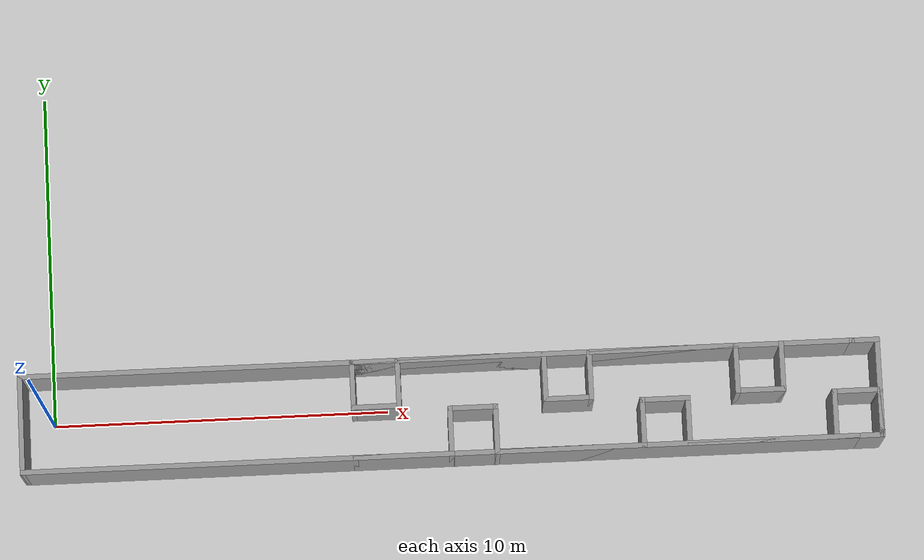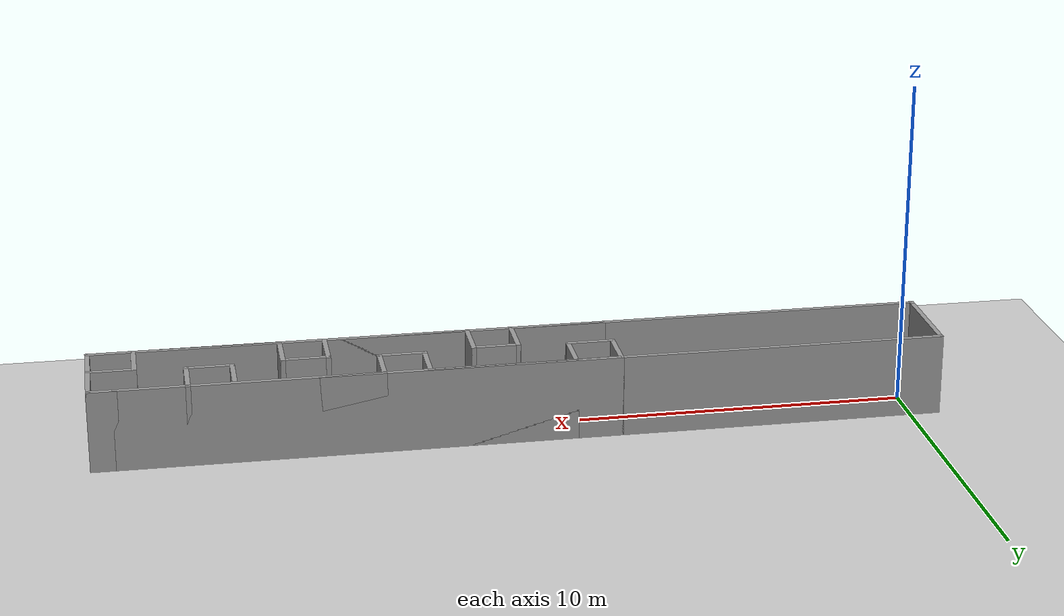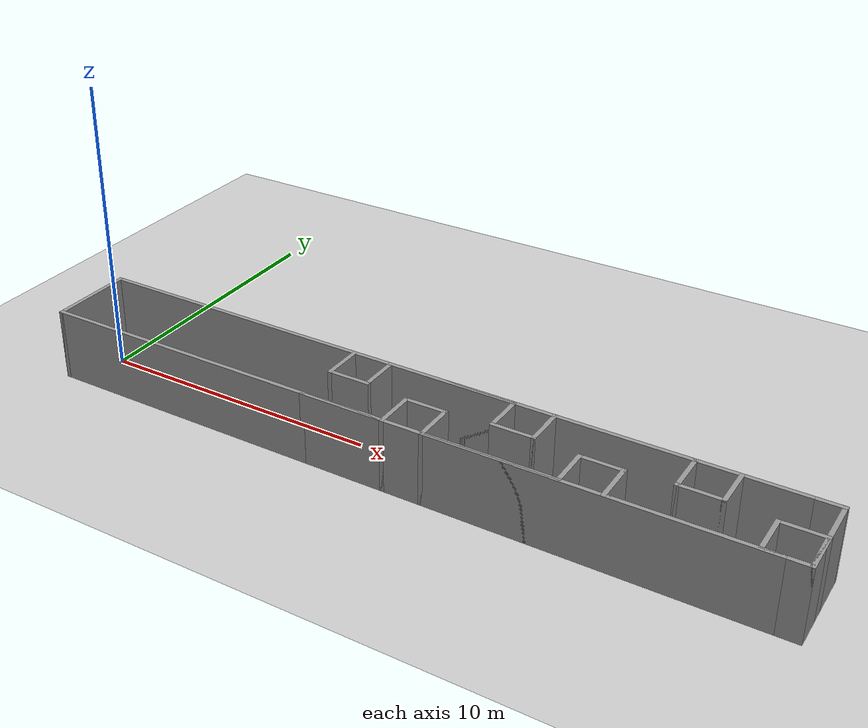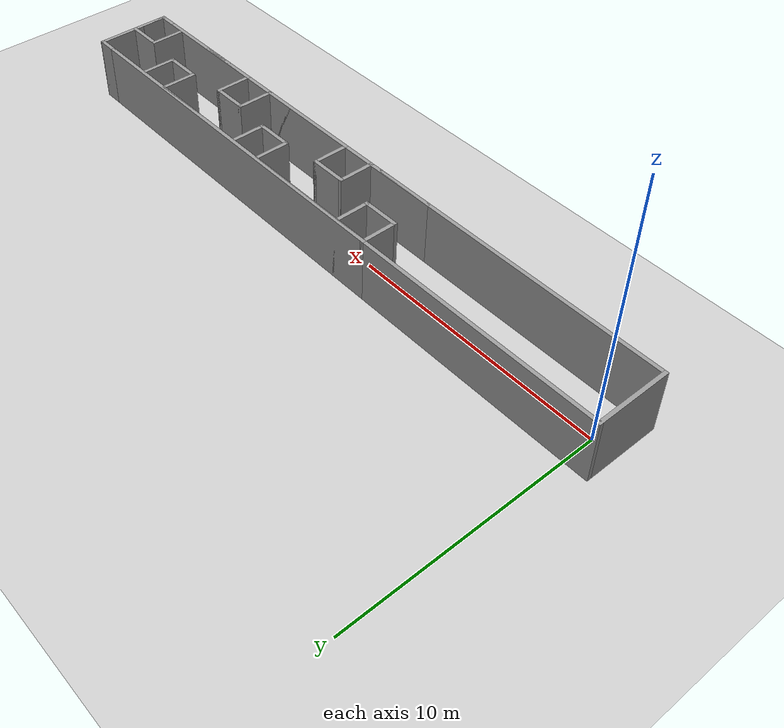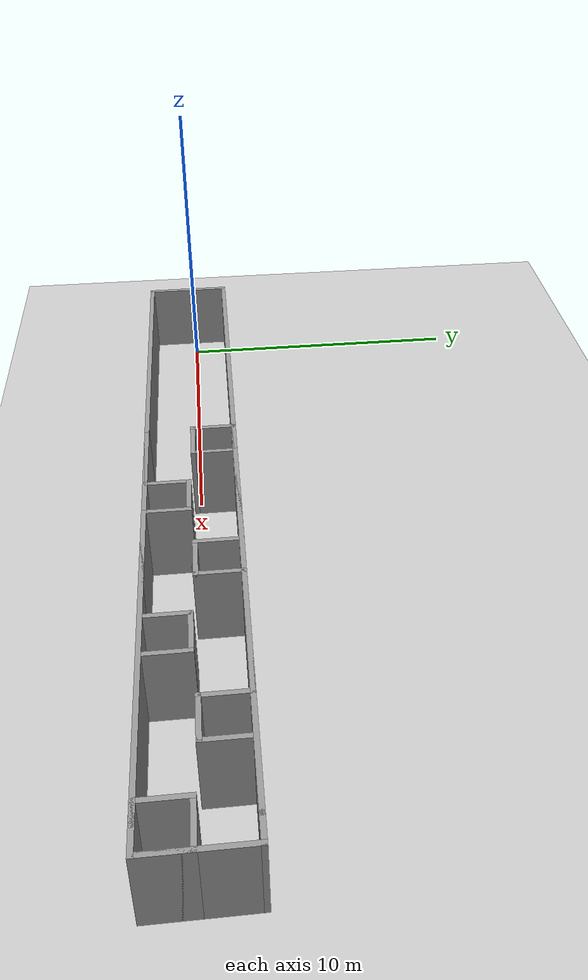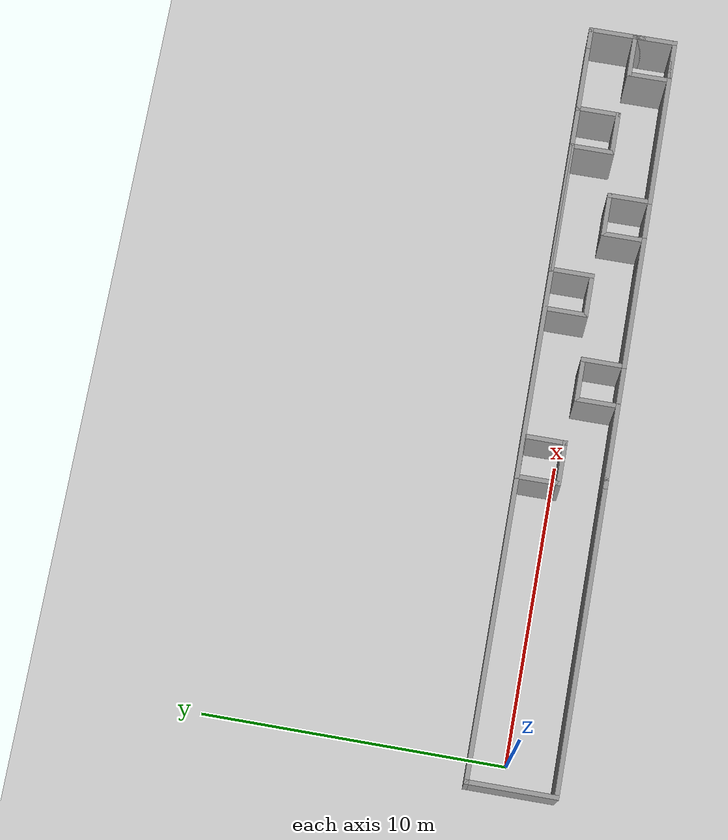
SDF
<sdf version="1.6">
 <world name="default">
  <light name="sun" type="directional">
   <pose>0 0 10 0 -0 0</pose>
   <diffuse>0.8 0.8 0.8 1</diffuse>
   <specular>0.1 0.1 0.1 1</specular>
   <attenuation>
    <range>1000</range>
    <constant>0.9</constant>
    <linear>0.01</linear>
    <quadratic>0.001</quadratic>
   </attenuation>
   <direction>-0.5 0.5 -1</direction>
  </light>
  <model name="ground_plane">
   <static>1</static>
   <link name="link">
    <collision name="collision">
     <geometry><plane><normal>0 0 1</normal><size>100 100</size></plane></geometry>
     <surface><friction><ode><mu>100</mu><mu2>50</mu2></ode></friction></surface>
    </collision>
    <visual name="visual">
     <cast_shadows>0</cast_shadows>
     <geometry><plane><normal>0 0 1</normal><size>100 100</size></plane></geometry>
     <material>
      <script><uri>file://media/materials/scripts/gazebo.material</uri><name>Gazebo/Grey</name></script>
     </material>
    </visual>
   </link>
  </model>
  <gravity>0 0 -9.8</gravity>
  <magnetic_field>6e-06 2.3e-05 -4.2e-05</magnetic_field>
  <atmosphere type="adiabatic"/>
  <physics name="default_physics" default="0" type="ode">
   <max_step_size>0.001</max_step_size>
   <real_time_factor>1</real_time_factor>
   <real_time_update_rate>1000</real_time_update_rate>
  </physics>
  <scene><ambient>0.4 0.4 0.4 1</ambient><background>0.7 0.7 0.7 1</background><shadows>1</shadows></scene>
  <spherical_coordinates>
   <surface_model>EARTH_WGS84</surface_model>
   <latitude_deg>0</latitude_deg>
   <longitude_deg>0</longitude_deg>
   <elevation>0</elevation>
   <heading_deg>0</heading_deg>
  </spherical_coordinates>
  <model name="small_s_map">
   <pose>11.8833 -0.220032 0 0 -0 0</pose>
   <link name="Wall_48">
    <collision name="Wall_48_Collision">
     <geometry><box><size>3 0.15 2.5</size></box></geometry>
     <pose>0 0 1.25 0 -0 0</pose>
    </collision>
    <visual name="Wall_48_Visual">
     <pose>0 0 1.25 0 -0 0</pose>
     <geometry><box><size>3 0.15 2.5</size></box></geometry>
     <material>
      <script><uri>file://media/materials/scripts/gazebo.material</uri><name>Gazebo/Grey</name></script>
      <ambient>1 1 1 1</ambient>
     </material>
    </visual>
    <pose>-12.725 0 0 0 0 -1.5708</pose>
   </link>
   <link name="Wall_49">
    <collision name="Wall_49_Collision">
     <geometry><box><size>10 0.15 2.5</size></box></geometry>
     <pose>0 0 1.25 0 -0 0</pose>
    </collision>
    <visual name="Wall_49_Visual">
     <pose>0 0 1.25 0 -0 0</pose>
     <geometry><box><size>10 0.15 2.5</size></box></geometry>
     <material>
      <script><uri>file://media/materials/scripts/gazebo.material</uri><name>Gazebo/Grey</name></script>
      <ambient>1 1 1 1</ambient>
     </material>
    </visual>
    <pose>-7.8 -1.425 0 0 -0 0</pose>
   </link>
   <link name="Wall_51">
    <collision name="Wall_51_Collision">
     <geometry><box><size>10 0.15 2.5</size></box></geometry>
     <pose>0 0 1.25 0 -0 0</pose>
    </collision>
    <visual name="Wall_51_Visual">
     <pose>0 0 1.25 0 -0 0</pose>
     <geometry><box><size>10 0.15 2.5</size></box></geometry>
     <material>
      <script><uri>file://media/materials/scripts/gazebo.material</uri><name>Gazebo/Grey</name></script>
      <ambient>1 1 1 1</ambient>
     </material>
    </visual>
    <pose>-7.8 1.425 0 0 -0 3.14159</pose>
   </link>
   <link name="Wall_53">
    <collision name="Wall_53_Collision">
     <geometry><box><size>15 0.15 2.5</size></box></geometry>
     <pose>0 0 1.25 0 -0 0</pose>
    </collision>
    <visual name="Wall_53_Visual">
     <pose>0 0 1.25 0 -0 0</pose>
     <geometry><box><size>15 0.15 2.5</size></box></geometry>
     <material>
      <script><uri>file://media/materials/scripts/gazebo.material</uri><name>Gazebo/Grey</name></script>
      <ambient>1 1 1 1</ambient>
     </material>
    </visual>
    <pose>4.55 1.425 0 0 -0 0</pose>
   </link>
   <link name="Wall_55">
    <collision name="Wall_55_Collision">
     <geometry><box><size>15 0.15 2.5</size></box></geometry>
     <pose>0 0 1.25 0 -0 0</pose>
    </collision>
    <visual name="Wall_55_Visual">
     <pose>0 0 1.25 0 -0 0</pose>
     <geometry><box><size>15 0.15 2.5</size></box></geometry>
     <material>
      <script><uri>file://media/materials/scripts/gazebo.material</uri><name>Gazebo/Grey</name></script>
      <ambient>1 1 1 1</ambient>
     </material>
    </visual>
    <pose>4.55 -1.425 0 0 -0 3.14159</pose>
   </link>
   <link name="Wall_57">
    <collision name="Wall_57_Collision">
     <geometry><box><size>1.5 0.15 2.5</size></box></geometry>
     <pose>0 0 1.25 0 -0 0</pose>
    </collision>
    <visual name="Wall_57_Visual">
     <pose>0 0 1.25 0 -0 0</pose>
     <geometry><box><size>1.5 0.15 2.5</size></box></geometry>
     <material>
      <script><uri>file://media/materials/scripts/gazebo.material</uri><name>Gazebo/Grey</name></script>
      <ambient>1 1 1 1</ambient>
     </material>
    </visual>
    <pose>-2.2 1.425 0 0 -0 0</pose>
   </link>
   <link name="Wall_58">
    <collision name="Wall_58_Collision">
     <geometry><box><size>1.5 0.15 2.5</size></box></geometry>
     <pose>0 0 1.25 0 -0 0</pose>
    </collision>
    <visual name="Wall_58_Visual">
     <pose>0 0 1.25 0 -0 0</pose>
     <geometry><box><size>1.5 0.15 2.5</size></box></geometry>
     <material>
      <script><uri>file://media/materials/scripts/gazebo.material</uri><name>Gazebo/Grey</name></script>
      <ambient>1 1 1 1</ambient>
     </material>
    </visual>
    <pose>-1.525 0.75 0 0 0 -1.5708</pose>
   </link>
   <link name="Wall_59">
    <collision name="Wall_59_Collision">
     <geometry><box><size>1.5 0.15 2.5</size></box></geometry>
     <pose>0 0 1.25 0 -0 0</pose>
    </collision>
    <visual name="Wall_59_Visual">
     <pose>0 0 1.25 0 -0 0</pose>
     <geometry><box><size>1.5 0.15 2.5</size></box></geometry>
     <material>
      <script><uri>file://media/materials/scripts/gazebo.material</uri><name>Gazebo/Grey</name></script>
      <ambient>1 1 1 1</ambient>
     </material>
    </visual>
    <pose>-2.2 0.075 0 0 -0 3.14159</pose>
   </link>
   <link name="Wall_61">
    <collision name="Wall_61_Collision">
     <geometry><box><size>4.5 0.15 2.5</size></box></geometry>
     <pose>0 0 1.25 0 -0 0</pose>
    </collision>
    <visual name="Wall_61_Visual">
     <pose>0 0 1.25 0 -0 0</pose>
     <geometry><box><size>4.5 0.15 2.5</size></box></geometry>
     <material>
      <script><uri>file://media/materials/scripts/gazebo.material</uri><name>Gazebo/Grey</name></script>
      <ambient>1 1 1 1</ambient>
     </material>
    </visual>
    <pose>0.65 1.425 0 0 -0 0</pose>
   </link>
   <link name="Wall_62">
    <collision name="Wall_62_Collision">
     <geometry><box><size>1.5 0.15 2.5</size></box></geometry>
     <pose>0 0 1.25 0 -0 0</pose>
    </collision>
    <visual name="Wall_62_Visual">
     <pose>0 0 1.25 0 -0 0</pose>
     <geometry><box><size>1.5 0.15 2.5</size></box></geometry>
     <material>
      <script><uri>file://media/materials/scripts/gazebo.material</uri><name>Gazebo/Grey</name></script>
      <ambient>1 1 1 1</ambient>
     </material>
    </visual>
    <pose>2.825 0.75 0 0 0 -1.5708</pose>
   </link>
   <link name="Wall_63">
    <collision name="Wall_63_Collision">
     <geometry><box><size>1.5 0.15 2.5</size></box></geometry>
     <pose>0 0 1.25 0 -0 0</pose>
    </collision>
    <visual name="Wall_63_Visual">
     <pose>0 0 1.25 0 -0 0</pose>
     <geometry><box><size>1.5 0.15 2.5</size></box></geometry>
     <material>
      <script><uri>file://media/materials/scripts/gazebo.material</uri><name>Gazebo/Grey</name></script>
      <ambient>1 1 1 1</ambient>
     </material>
    </visual>
    <pose>3.5 0.075 0 0 -0 0</pose>
   </link>
   <link name="Wall_64">
    <collision name="Wall_64_Collision">
     <geometry><box><size>1.5 0.15 2.5</size></box></geometry>
     <pose>0 0 1.25 0 -0 0</pose>
    </collision>
    <visual name="Wall_64_Visual">
     <pose>0 0 1.25 0 -0 0</pose>
     <geometry><box><size>1.5 0.15 2.5</size></box></geometry>
     <material>
      <script><uri>file://media/materials/scripts/gazebo.material</uri><name>Gazebo/Grey</name></script>
      <ambient>1 1 1 1</ambient>
     </material>
    </visual>
    <pose>4.175 0.75 0 0 -0 1.5708</pose>
   </link>
   <link name="Wall_65">
    <collision name="Wall_65_Collision">
     <geometry><box><size>4.5 0.15 2.5</size></box></geometry>
     <pose>0 0 1.25 0 -0 0</pose>
    </collision>
    <visual name="Wall_65_Visual">
     <pose>0 0 1.25 0 -0 0</pose>
     <geometry><box><size>4.5 0.15 2.5</size></box></geometry>
     <material>
      <script><uri>file://media/materials/scripts/gazebo.material</uri><name>Gazebo/Grey</name></script>
      <ambient>1 1 1 1</ambient>
     </material>
    </visual>
    <pose>6.35 1.425 0 0 -0 0</pose>
   </link>
   <link name="Wall_66">
    <collision name="Wall_66_Collision">
     <geometry><box><size>1.5 0.15 2.5</size></box></geometry>
     <pose>0 0 1.25 0 -0 0</pose>
    </collision>
    <visual name="Wall_66_Visual">
     <pose>0 0 1.25 0 -0 0</pose>
     <geometry><box><size>1.5 0.15 2.5</size></box></geometry>
     <material>
      <script><uri>file://media/materials/scripts/gazebo.material</uri><name>Gazebo/Grey</name></script>
      <ambient>1 1 1 1</ambient>
     </material>
    </visual>
    <pose>8.525 0.75 0 0 0 -1.5708</pose>
   </link>
   <link name="Wall_67">
    <collision name="Wall_67_Collision">
     <geometry><box><size>1.5 0.15 2.5</size></box></geometry>
     <pose>0 0 1.25 0 -0 0</pose>
    </collision>
    <visual name="Wall_67_Visual">
     <pose>0 0 1.25 0 -0 0</pose>
     <geometry><box><size>1.5 0.15 2.5</size></box></geometry>
     <material>
      <script><uri>file://media/materials/scripts/gazebo.material</uri><name>Gazebo/Grey</name></script>
      <ambient>1 1 1 1</ambient>
     </material>
    </visual>
    <pose>9.2 0.075 0 0 -0 0</pose>
   </link>
   <link name="Wall_68">
    <collision name="Wall_68_Collision">
     <geometry><box><size>1.5 0.15 2.5</size></box></geometry>
     <pose>0 0 1.25 0 -0 0</pose>
    </collision>
    <visual name="Wall_68_Visual">
     <pose>0 0 1.25 0 -0 0</pose>
     <geometry><box><size>1.5 0.15 2.5</size></box></geometry>
     <material>
      <script><uri>file://media/materials/scripts/gazebo.material</uri><name>Gazebo/Grey</name></script>
      <ambient>1 1 1 1</ambient>
     </material>
    </visual>
    <pose>9.875 0.75 0 0 -0 1.5708</pose>
   </link>
   <link name="Wall_70">
    <collision name="Wall_70_Collision">
     <geometry><box><size>3 0.15 2.5</size></box></geometry>
     <pose>0 0 1.25 0 -0 0</pose>
    </collision>
    <visual name="Wall_70_Visual">
     <pose>0 0 1.25 0 -0 0</pose>
     <geometry><box><size>3 0.15 2.5</size></box></geometry>
     <material>
      <script><uri>file://media/materials/scripts/gazebo.material</uri><name>Gazebo/Grey</name></script>
      <ambient>1 1 1 1</ambient>
     </material>
    </visual>
    <pose>-1.45 -1.425 0 0 -0 0</pose>
   </link>
   <link name="Wall_71">
    <collision name="Wall_71_Collision">
     <geometry><box><size>1.5 0.15 2.5</size></box></geometry>
     <pose>0 0 1.25 0 -0 0</pose>
    </collision>
    <visual name="Wall_71_Visual">
     <pose>0 0 1.25 0 -0 0</pose>
     <geometry><box><size>1.5 0.15 2.5</size></box></geometry>
     <material>
      <script><uri>file://media/materials/scripts/gazebo.material</uri><name>Gazebo/Grey</name></script>
      <ambient>1 1 1 1</ambient>
     </material>
    </visual>
    <pose>-0.025 -0.75 0 0 -0 1.5708</pose>
   </link>
   <link name="Wall_72">
    <collision name="Wall_72_Collision">
     <geometry><box><size>1.5 0.15 2.5</size></box></geometry>
     <pose>0 0 1.25 0 -0 0</pose>
    </collision>
    <visual name="Wall_72_Visual">
     <pose>0 0 1.25 0 -0 0</pose>
     <geometry><box><size>1.5 0.15 2.5</size></box></geometry>
     <material>
      <script><uri>file://media/materials/scripts/gazebo.material</uri><name>Gazebo/Grey</name></script>
      <ambient>1 1 1 1</ambient>
     </material>
    </visual>
    <pose>0.65 -0.075 0 0 -0 0</pose>
   </link>
   <link name="Wall_73">
    <collision name="Wall_73_Collision">
     <geometry><box><size>1.5 0.15 2.5</size></box></geometry>
     <pose>0 0 1.25 0 -0 0</pose>
    </collision>
    <visual name="Wall_73_Visual">
     <pose>0 0 1.25 0 -0 0</pose>
     <geometry><box><size>1.5 0.15 2.5</size></box></geometry>
     <material>
      <script><uri>file://media/materials/scripts/gazebo.material</uri><name>Gazebo/Grey</name></script>
      <ambient>1 1 1 1</ambient>
     </material>
    </visual>
    <pose>1.325 -0.75 0 0 0 -1.5708</pose>
   </link>
   <link name="Wall_74">
    <collision name="Wall_74_Collision">
     <geometry><box><size>4.5 0.15 2.5</size></box></geometry>
     <pose>0 0 1.25 0 -0 0</pose>
    </collision>
    <visual name="Wall_74_Visual">
     <pose>0 0 1.25 0 -0 0</pose>
     <geometry><box><size>4.5 0.15 2.5</size></box></geometry>
     <material>
      <script><uri>file://media/materials/scripts/gazebo.material</uri><name>Gazebo/Grey</name></script>
      <ambient>1 1 1 1</ambient>
     </material>
    </visual>
    <pose>3.5 -1.425 0 0 -0 0</pose>
   </link>
   <link name="Wall_75">
    <collision name="Wall_75_Collision">
     <geometry><box><size>1.5 0.15 2.5</size></box></geometry>
     <pose>0 0 1.25 0 -0 0</pose>
    </collision>
    <visual name="Wall_75_Visual">
     <pose>0 0 1.25 0 -0 0</pose>
     <geometry><box><size>1.5 0.15 2.5</size></box></geometry>
     <material>
      <script><uri>file://media/materials/scripts/gazebo.material</uri><name>Gazebo/Grey</name></script>
      <ambient>1 1 1 1</ambient>
     </material>
    </visual>
    <pose>5.675 -0.75 0 0 -0 1.5708</pose>
   </link>
   <link name="Wall_76">
    <collision name="Wall_76_Collision">
     <geometry><box><size>1.5 0.15 2.5</size></box></geometry>
     <pose>0 0 1.25 0 -0 0</pose>
    </collision>
    <visual name="Wall_76_Visual">
     <pose>0 0 1.25 0 -0 0</pose>
     <geometry><box><size>1.5 0.15 2.5</size></box></geometry>
     <material>
      <script><uri>file://media/materials/scripts/gazebo.material</uri><name>Gazebo/Grey</name></script>
      <ambient>1 1 1 1</ambient>
     </material>
    </visual>
    <pose>6.35 -0.075 0 0 -0 0</pose>
   </link>
   <link name="Wall_77">
    <collision name="Wall_77_Collision">
     <geometry><box><size>1.5 0.15 2.5</size></box></geometry>
     <pose>0 0 1.25 0 -0 0</pose>
    </collision>
    <visual name="Wall_77_Visual">
     <pose>0 0 1.25 0 -0 0</pose>
     <geometry><box><size>1.5 0.15 2.5</size></box></geometry>
     <material>
      <script><uri>file://media/materials/scripts/gazebo.material</uri><name>Gazebo/Grey</name></script>
      <ambient>1 1 1 1</ambient>
     </material>
    </visual>
    <pose>7.025 -0.75 0 0 0 -1.5708</pose>
   </link>
   <link name="Wall_78">
    <collision name="Wall_78_Collision">
     <geometry><box><size>4.5 0.15 2.5</size></box></geometry>
     <pose>0 0 1.25 0 -0 0</pose>
    </collision>
    <visual name="Wall_78_Visual">
     <pose>0 0 1.25 0 -0 0</pose>
     <geometry><box><size>4.5 0.15 2.5</size></box></geometry>
     <material>
      <script><uri>file://media/materials/scripts/gazebo.material</uri><name>Gazebo/Grey</name></script>
      <ambient>1 1 1 1</ambient>
     </material>
    </visual>
    <pose>9.2 -1.425 0 0 -0 0</pose>
   </link>
   <link name="Wall_79">
    <collision name="Wall_79_Collision">
     <geometry><box><size>1.5 0.15 2.5</size></box></geometry>
     <pose>0 0 1.25 0 -0 0</pose>
    </collision>
    <visual name="Wall_79_Visual">
     <pose>0 0 1.25 0 -0 0</pose>
     <geometry><box><size>1.5 0.15 2.5</size></box></geometry>
     <material>
      <script><uri>file://media/materials/scripts/gazebo.material</uri><name>Gazebo/Grey</name></script>
      <ambient>1 1 1 1</ambient>
     </material>
    </visual>
    <pose>11.375 -0.75 0 0 -0 1.5708</pose>
   </link>
   <link name="Wall_81">
    <collision name="Wall_81_Collision">
     <geometry><box><size>1.5 0.15 2.5</size></box></geometry>
     <pose>0 0 1.25 0 -0 0</pose>
    </collision>
    <visual name="Wall_81_Visual">
     <pose>0 0 1.25 0 -0 0</pose>
     <geometry><box><size>1.5 0.15 2.5</size></box></geometry>
     <material>
      <script><uri>file://media/materials/scripts/gazebo.material</uri><name>Gazebo/Grey</name></script>
      <ambient>1 1 1 1</ambient>
     </material>
    </visual>
    <pose>12.05 -0.075 0 0 -0 0</pose>
   </link>
   <link name="Wall_82">
    <collision name="Wall_82_Collision">
     <geometry><box><size>1.5 0.15 2.5</size></box></geometry>
     <pose>0 0 1.25 0 -0 0</pose>
    </collision>
    <visual name="Wall_82_Visual">
     <pose>0 0 1.25 0 -0 0</pose>
     <geometry><box><size>1.5 0.15 2.5</size></box></geometry>
     <material>
      <script><uri>file://media/materials/scripts/gazebo.material</uri><name>Gazebo/Grey</name></script>
      <ambient>1 1 1 1</ambient>
     </material>
    </visual>
    <pose>12.725 -0.75 0 0 0 -1.5708</pose>
   </link>
   <link name="Wall_83">
    <collision name="Wall_83_Collision">
     <geometry><box><size>1.5 0.15 2.5</size></box></geometry>
     <pose>0 0 1.25 0 -0 0</pose>
    </collision>
    <visual name="Wall_83_Visual">
     <pose>0 0 1.25 0 -0 0</pose>
     <geometry><box><size>1.5 0.15 2.5</size></box></geometry>
     <material>
      <script><uri>file://media/materials/scripts/gazebo.material</uri><name>Gazebo/Grey</name></script>
      <ambient>1 1 1 1</ambient>
     </material>
    </visual>
    <pose>12.05 -1.425 0 0 -0 3.14159</pose>
   </link>
   <link name="Wall_87">
    <collision name="Wall_87_Collision">
     <geometry><box><size>3 0.15 2.5</size></box></geometry>
     <pose>0 0 1.25 0 -0 0</pose>
    </collision>
    <visual name="Wall_87_Visual">
     <pose>0 0 1.25 0 -0 0</pose>
     <geometry><box><size>3 0.15 2.5</size></box></geometry>
     <material>
      <script><uri>file://media/materials/scripts/gazebo.material</uri><name>Gazebo/Grey</name></script>
      <ambient>1 1 1 1</ambient>
     </material>
    </visual>
    <pose>12.725 0 0 0 -0 1.5708</pose>
   </link>
   <link name="Wall_88">
    <collision name="Wall_88_Collision">
     <geometry><box><size>0.9 0.15 2.5</size></box></geometry>
     <pose>0 0 1.25 0 -0 0</pose>
    </collision>
    <visual name="Wall_88_Visual">
     <pose>0 0 1.25 0 -0 0</pose>
     <geometry><box><size>0.9 0.15 2.5</size></box></geometry>
     <material>
      <script><uri>file://media/materials/scripts/gazebo.material</uri><name>Gazebo/Grey</name></script>
      <ambient>1 1 1 1</ambient>
     </material>
    </visual>
    <pose>12.35 1.425 0 0 0 -3.14159</pose>
   </link>
   <link name="Wall_90">
    <collision name="Wall_90_Collision">
     <geometry><box><size>1.5 0.15 2.5</size></box></geometry>
     <pose>0 0 1.25 0 -0 0</pose>
    </collision>
    <visual name="Wall_90_Visual">
     <pose>0 0 1.25 0 -0 0</pose>
     <geometry><box><size>1.5 0.15 2.5</size></box></geometry>
     <material>
      <script><uri>file://media/materials/scripts/gazebo.material</uri><name>Gazebo/Grey</name></script>
      <ambient>1 1 1 1</ambient>
     </material>
    </visual>
    <pose>-2.875 0.75 0 0 -0 1.5708</pose>
   </link>
   <static>1</static>
  </model>
 </world>
</sdf>
